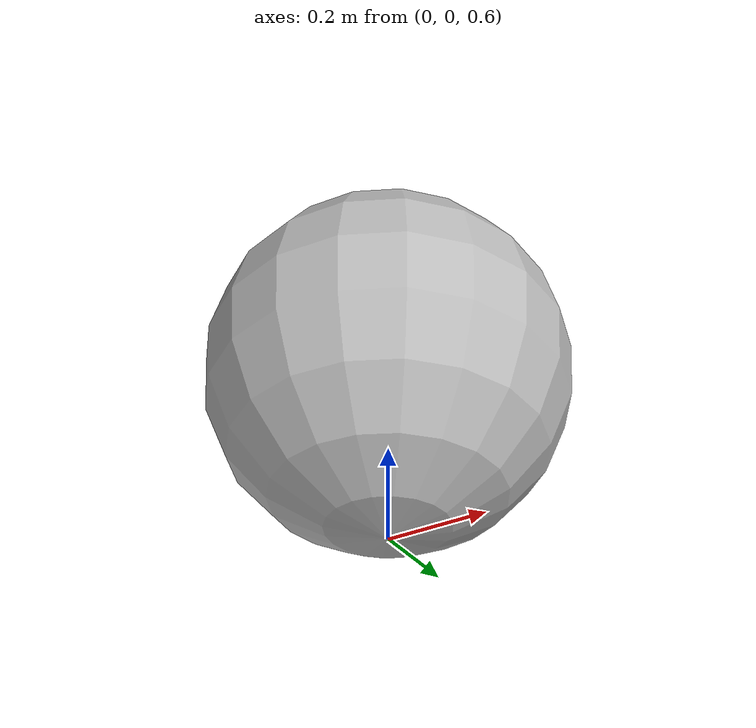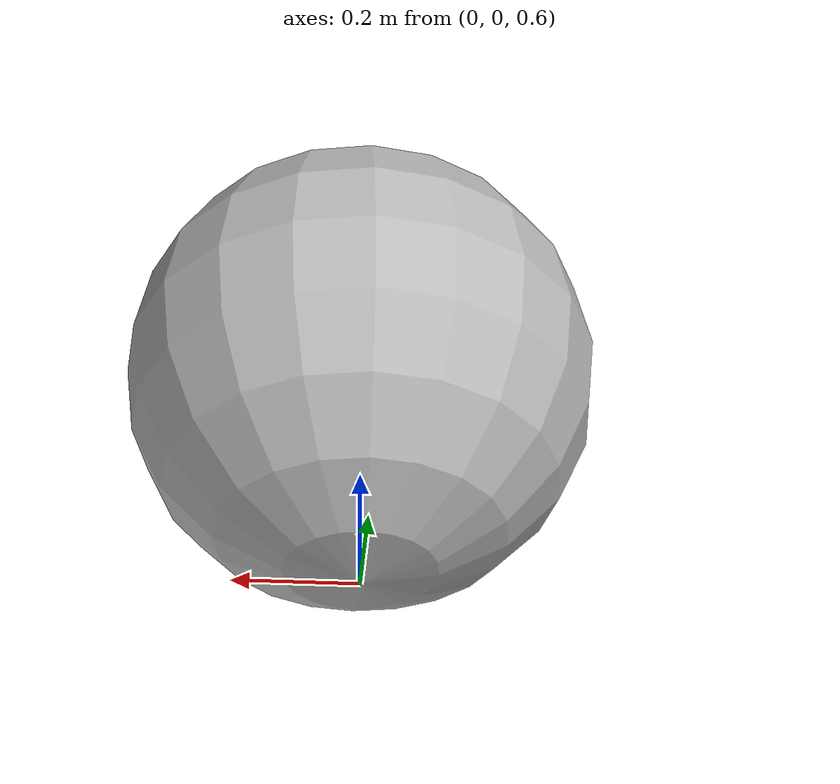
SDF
<?xml version="1.0"?>
<sdf version="1.6">

<!-- Goal. -->
<model name="goal">
  <static>false</static>

  <link name="goal">
    <pose>0 0 1. 0 0 0</pose>

    <collision name="goal_collision">
      <geometry>
        <sphere>
          <radius>0.4</radius>
        </sphere>
      </geometry>
    </collision>

    <visual name="visual">
      <geometry>
        <sphere>
          <radius>0.4</radius>
        </sphere>
      </geometry>
      <material>
        <script>
          <uri>model://goal/materials/scripts</uri>
          <uri>model://goal/materials/textures</uri>
          <name>goal</name>
        </script>
      </material>
    </visual>
  </link>
  <plugin name="InfinitySpawn" filename="libgazeboInfinitySpawn.so"/>
</model>
</sdf>
